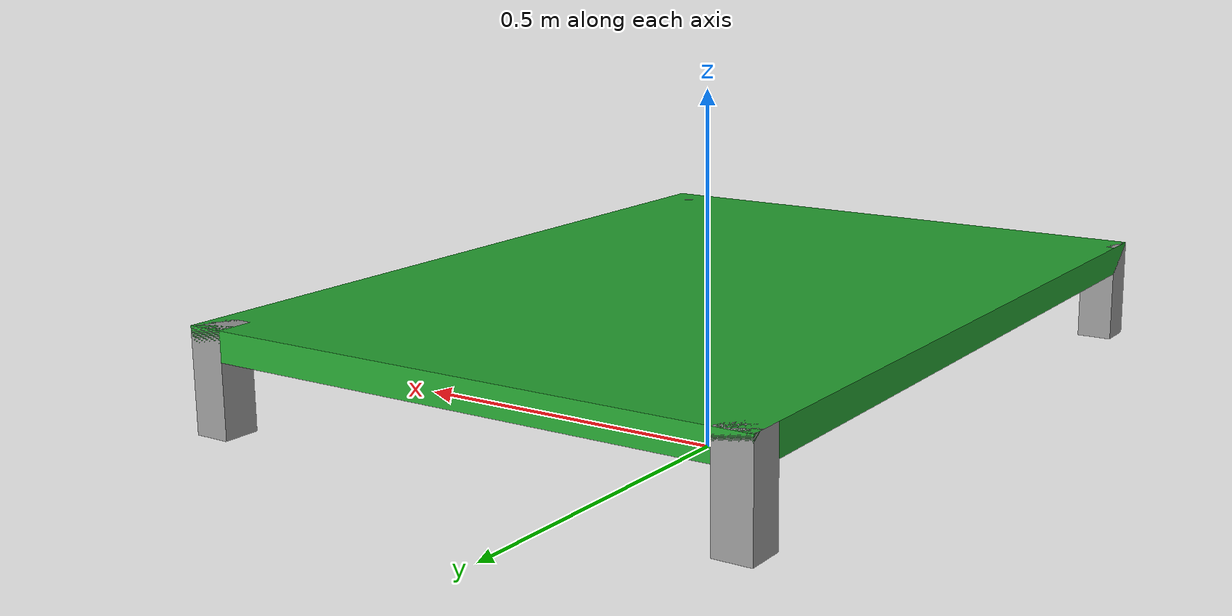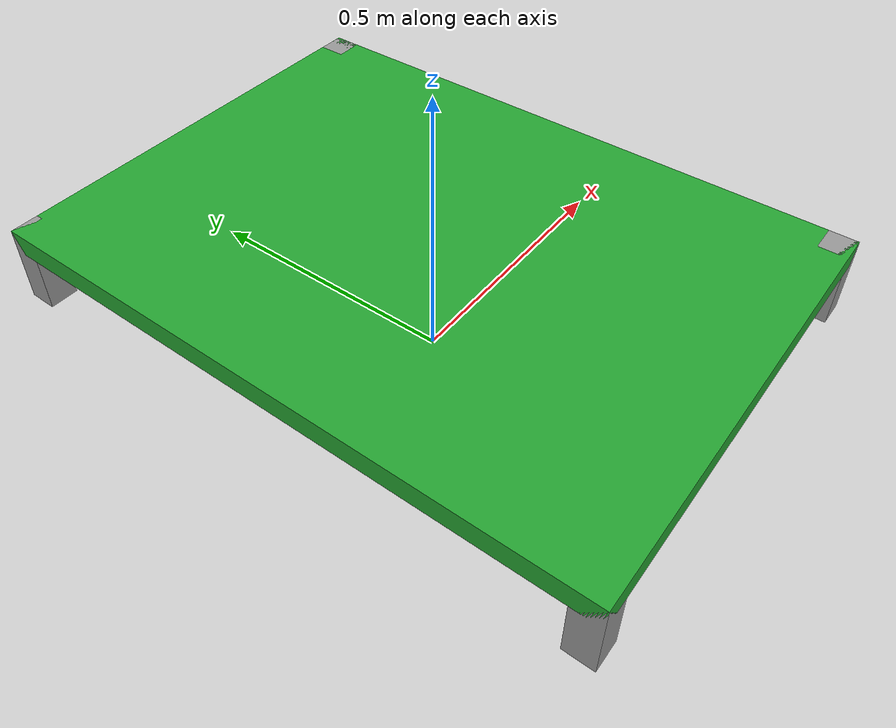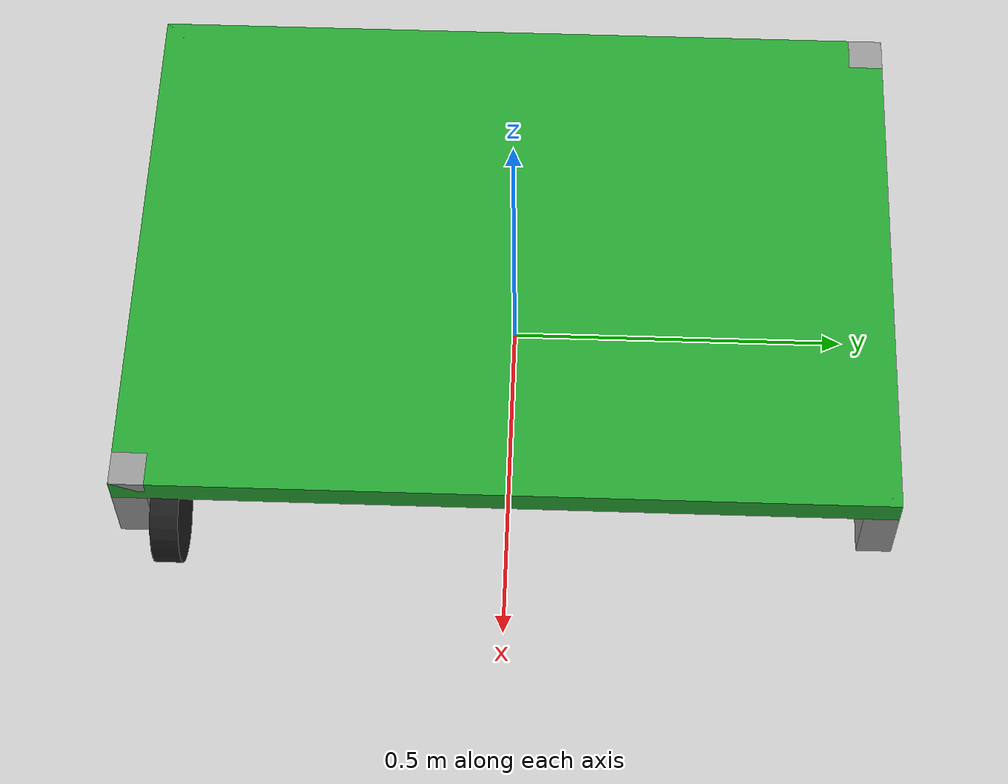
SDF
<?xml version='1.0'?>
<sdf version='1.6'>
  <model name='temp03'>
    <link name='link_0'>
      <pose frame=''>0 0 0.22 0 -0 0</pose>
      <inertial>
        <mass>1</mass>
        <inertia>
          <ixx>0.166667</ixx>
          <ixy>0</ixy>
          <ixz>0</ixz>
          <iyy>0.166667</iyy>
          <iyz>0</iyz>
          <izz>0.166667</izz>
        </inertia>
        <pose frame=''>0 0 0 0 -0 0</pose>
      </inertial>
      <self_collide>0</self_collide>
      <kinematic>0</kinematic>
      <visual name='visual'>
        <pose frame=''>0 0 0 0 -0 0</pose>
        <geometry>
          <box>
            <size>0.8 1.1 0.04</size>
          </box>
        </geometry>
        <material>
          <lighting>1</lighting>
          <script>
            <uri>file://media/materials/scripts/gazebo.material</uri>
            <name>Gazebo/Green</name>
          </script>
          <ambient>0 0.4 0 0</ambient>
          <diffuse>0 0.4 0 0</diffuse>
          <specular>0.1 0.1 0.1 1</specular>
          <emissive>0 0 0 1</emissive>
          <shader type='vertex'>
            <normal_map>__default__</normal_map>
          </shader>
        </material>
        <cast_shadows>1</cast_shadows>
        <transparency>0</transparency>
      </visual>
      <collision name='collision'>
        <laser_retro>0</laser_retro>
        <max_contacts>10</max_contacts>
        <pose frame=''>0 0 0 0 -0 0</pose>
        <geometry>
          <box>
            <size>0.8 1.1 0.04</size>
          </box>
        </geometry>
        <surface>
          <friction>
            <ode>
              <mu>1</mu>
              <mu2>1</mu2>
              <fdir1>0 0 0</fdir1>
              <slip1>0</slip1>
              <slip2>0</slip2>
            </ode>
            <torsional>
              <coefficient>1</coefficient>
              <patch_radius>0</patch_radius>
              <surface_radius>0</surface_radius>
              <use_patch_radius>1</use_patch_radius>
              <ode>
                <slip>0</slip>
              </ode>
            </torsional>
          </friction>
          <bounce>
            <restitution_coefficient>0</restitution_coefficient>
            <threshold>1e+06</threshold>
          </bounce>
          <contact>
            <collide_without_contact>0</collide_without_contact>
            <collide_without_contact_bitmask>1</collide_without_contact_bitmask>
            <collide_bitmask>1</collide_bitmask>
            <ode>
              <soft_cfm>0</soft_cfm>
              <soft_erp>0.2</soft_erp>
              <kp>1e+13</kp>
              <kd>1</kd>
              <max_vel>0.01</max_vel>
              <min_depth>0</min_depth>
            </ode>
            <bullet>
              <split_impulse>1</split_impulse>
              <split_impulse_penetration_threshold>-0.01</split_impulse_penetration_threshold>
              <soft_cfm>0</soft_cfm>
              <soft_erp>0.2</soft_erp>
              <kp>1e+13</kp>
              <kd>1</kd>
            </bullet>
          </contact>
        </surface>
      </collision>
    </link>
    <link name='link_0_0'>
      <pose frame=''>-0.375 -0.525 0.17 0 -0 0</pose>
      <inertial>
        <mass>1</mass>
        <inertia>
          <ixx>0.166667</ixx>
          <ixy>0</ixy>
          <ixz>0</ixz>
          <iyy>0.166667</iyy>
          <iyz>0</iyz>
          <izz>0.166667</izz>
        </inertia>
        <pose frame=''>0 0 0 0 -0 0</pose>
      </inertial>
      <self_collide>0</self_collide>
      <kinematic>0</kinematic>
      <visual name='visual'>
        <pose frame=''>0 0 0 0 -0 0</pose>
        <geometry>
          <box>
            <size>0.05 0.05 0.14</size>
          </box>
        </geometry>
        <material>
          <lighting>1</lighting>
          <script>
            <uri>file://media/materials/scripts/gazebo.material</uri>
            <name>Gazebo/Grey</name>
          </script>
          <ambient>0.3 0.3 0.3 1</ambient>
          <diffuse>0.7 0.7 0.7 1</diffuse>
          <specular>0.01 0.01 0.01 1</specular>
          <emissive>0 0 0 1</emissive>
          <shader type='vertex'>
            <normal_map>__default__</normal_map>
          </shader>
        </material>
        <cast_shadows>1</cast_shadows>
        <transparency>0</transparency>
      </visual>
      <collision name='collision'>
        <laser_retro>0</laser_retro>
        <max_contacts>10</max_contacts>
        <pose frame=''>0 0 0 0 -0 0</pose>
        <geometry>
          <box>
            <size>0.05 0.05 0.14</size>
          </box>
        </geometry>
        <surface>
          <friction>
            <ode>
              <mu>1</mu>
              <mu2>1</mu2>
              <fdir1>0 0 0</fdir1>
              <slip1>0</slip1>
              <slip2>0</slip2>
            </ode>
            <torsional>
              <coefficient>1</coefficient>
              <patch_radius>0</patch_radius>
              <surface_radius>0</surface_radius>
              <use_patch_radius>1</use_patch_radius>
              <ode>
                <slip>0</slip>
              </ode>
            </torsional>
          </friction>
          <bounce>
            <restitution_coefficient>0</restitution_coefficient>
            <threshold>1e+06</threshold>
          </bounce>
          <contact>
            <collide_without_contact>0</collide_without_contact>
            <collide_without_contact_bitmask>1</collide_without_contact_bitmask>
            <collide_bitmask>1</collide_bitmask>
            <ode>
              <soft_cfm>0</soft_cfm>
              <soft_erp>0.2</soft_erp>
              <kp>1e+13</kp>
              <kd>1</kd>
              <max_vel>0.01</max_vel>
              <min_depth>0</min_depth>
            </ode>
            <bullet>
              <split_impulse>1</split_impulse>
              <split_impulse_penetration_threshold>-0.01</split_impulse_penetration_threshold>
              <soft_cfm>0</soft_cfm>
              <soft_erp>0.2</soft_erp>
              <kp>1e+13</kp>
              <kd>1</kd>
            </bullet>
          </contact>
        </surface>
      </collision>
    </link>
    <link name='link_0_0_clone'>
      <pose frame=''>0.375 -0.525 0.17 0 -0 0</pose>
      <inertial>
        <mass>1</mass>
        <inertia>
          <ixx>0.166667</ixx>
          <ixy>0</ixy>
          <ixz>0</ixz>
          <iyy>0.166667</iyy>
          <iyz>0</iyz>
          <izz>0.166667</izz>
        </inertia>
        <pose frame=''>0 0 0 0 -0 0</pose>
      </inertial>
      <self_collide>0</self_collide>
      <kinematic>0</kinematic>
      <visual name='visual_0'>
        <pose frame=''>0 0 0 0 -0 0</pose>
        <geometry>
          <box>
            <size>0.05 0.05 0.14</size>
          </box>
        </geometry>
        <material>
          <lighting>1</lighting>
          <script>
            <uri>file://media/materials/scripts/gazebo.material</uri>
            <name>Gazebo/Grey</name>
          </script>
          <ambient>0.3 0.3 0.3 1</ambient>
          <diffuse>0.7 0.7 0.7 1</diffuse>
          <specular>0.01 0.01 0.01 1</specular>
          <emissive>0 0 0 1</emissive>
          <shader type='vertex'>
            <normal_map>__default__</normal_map>
          </shader>
        </material>
        <cast_shadows>1</cast_shadows>
        <transparency>0</transparency>
      </visual>
      <collision name='collision'>
        <laser_retro>0</laser_retro>
        <max_contacts>10</max_contacts>
        <pose frame=''>0 0 0 0 -0 0</pose>
        <geometry>
          <box>
            <size>0.05 0.05 0.14</size>
          </box>
        </geometry>
        <surface>
          <friction>
            <ode>
              <mu>1</mu>
              <mu2>1</mu2>
              <fdir1>0 0 0</fdir1>
              <slip1>0</slip1>
              <slip2>0</slip2>
            </ode>
            <torsional>
              <coefficient>1</coefficient>
              <patch_radius>0</patch_radius>
              <surface_radius>0</surface_radius>
              <use_patch_radius>1</use_patch_radius>
              <ode>
                <slip>0</slip>
              </ode>
            </torsional>
          </friction>
          <bounce>
            <restitution_coefficient>0</restitution_coefficient>
            <threshold>1e+06</threshold>
          </bounce>
          <contact>
            <collide_without_contact>0</collide_without_contact>
            <collide_without_contact_bitmask>1</collide_without_contact_bitmask>
            <collide_bitmask>1</collide_bitmask>
            <ode>
              <soft_cfm>0</soft_cfm>
              <soft_erp>0.2</soft_erp>
              <kp>1e+13</kp>
              <kd>1</kd>
              <max_vel>0.01</max_vel>
              <min_depth>0</min_depth>
            </ode>
            <bullet>
              <split_impulse>1</split_impulse>
              <split_impulse_penetration_threshold>-0.01</split_impulse_penetration_threshold>
              <soft_cfm>0</soft_cfm>
              <soft_erp>0.2</soft_erp>
              <kp>1e+13</kp>
              <kd>1</kd>
            </bullet>
          </contact>
        </surface>
      </collision>
    </link>
    <link name='link_0_0_clone_0'>
      <pose frame=''>-0.375 0.525 0.17 0 -0 0</pose>
      <inertial>
        <mass>1</mass>
        <inertia>
          <ixx>0.166667</ixx>
          <ixy>0</ixy>
          <ixz>0</ixz>
          <iyy>0.166667</iyy>
          <iyz>0</iyz>
          <izz>0.166667</izz>
        </inertia>
        <pose frame=''>0 0 0 0 -0 0</pose>
      </inertial>
      <self_collide>0</self_collide>
      <kinematic>0</kinematic>
      <visual name='visual_0'>
        <pose frame=''>0 0 0 0 -0 0</pose>
        <geometry>
          <box>
            <size>0.05 0.05 0.14</size>
          </box>
        </geometry>
        <material>
          <lighting>1</lighting>
          <script>
            <uri>file://media/materials/scripts/gazebo.material</uri>
            <name>Gazebo/Grey</name>
          </script>
          <ambient>0.3 0.3 0.3 1</ambient>
          <diffuse>0.7 0.7 0.7 1</diffuse>
          <specular>0.01 0.01 0.01 1</specular>
          <emissive>0 0 0 1</emissive>
          <shader type='vertex'>
            <normal_map>__default__</normal_map>
          </shader>
        </material>
        <cast_shadows>1</cast_shadows>
        <transparency>0</transparency>
      </visual>
      <collision name='collision'>
        <laser_retro>0</laser_retro>
        <max_contacts>10</max_contacts>
        <pose frame=''>0 0 0 0 -0 0</pose>
        <geometry>
          <box>
            <size>0.05 0.05 0.14</size>
          </box>
        </geometry>
        <surface>
          <friction>
            <ode>
              <mu>1</mu>
              <mu2>1</mu2>
              <fdir1>0 0 0</fdir1>
              <slip1>0</slip1>
              <slip2>0</slip2>
            </ode>
            <torsional>
              <coefficient>1</coefficient>
              <patch_radius>0</patch_radius>
              <surface_radius>0</surface_radius>
              <use_patch_radius>1</use_patch_radius>
              <ode>
                <slip>0</slip>
              </ode>
            </torsional>
          </friction>
          <bounce>
            <restitution_coefficient>0</restitution_coefficient>
            <threshold>1e+06</threshold>
          </bounce>
          <contact>
            <collide_without_contact>0</collide_without_contact>
            <collide_without_contact_bitmask>1</collide_without_contact_bitmask>
            <collide_bitmask>1</collide_bitmask>
            <ode>
              <soft_cfm>0</soft_cfm>
              <soft_erp>0.2</soft_erp>
              <kp>1e+13</kp>
              <kd>1</kd>
              <max_vel>0.01</max_vel>
              <min_depth>0</min_depth>
            </ode>
            <bullet>
              <split_impulse>1</split_impulse>
              <split_impulse_penetration_threshold>-0.01</split_impulse_penetration_threshold>
              <soft_cfm>0</soft_cfm>
              <soft_erp>0.2</soft_erp>
              <kp>1e+13</kp>
              <kd>1</kd>
            </bullet>
          </contact>
        </surface>
      </collision>
    </link>
    <link name='link_0_0_clone_1'>
      <pose frame=''>0.375 0.525 0.17 0 -0 0</pose>
      <inertial>
        <mass>1</mass>
        <inertia>
          <ixx>0.166667</ixx>
          <ixy>0</ixy>
          <ixz>0</ixz>
          <iyy>0.166667</iyy>
          <iyz>0</iyz>
          <izz>0.166667</izz>
        </inertia>
        <pose frame=''>0 0 0 0 -0 0</pose>
      </inertial>
      <self_collide>0</self_collide>
      <kinematic>0</kinematic>
      <visual name='visual_0'>
        <pose frame=''>0 0 0 0 -0 0</pose>
        <geometry>
          <box>
            <size>0.05 0.05 0.14</size>
          </box>
        </geometry>
        <material>
          <lighting>1</lighting>
          <script>
            <uri>file://media/materials/scripts/gazebo.material</uri>
            <name>Gazebo/Grey</name>
          </script>
          <ambient>0.3 0.3 0.3 1</ambient>
          <diffuse>0.7 0.7 0.7 1</diffuse>
          <specular>0.01 0.01 0.01 1</specular>
          <emissive>0 0 0 1</emissive>
          <shader type='vertex'>
            <normal_map>__default__</normal_map>
          </shader>
        </material>
        <cast_shadows>1</cast_shadows>
        <transparency>0</transparency>
      </visual>
      <collision name='collision'>
        <laser_retro>0</laser_retro>
        <max_contacts>10</max_contacts>
        <pose frame=''>0 0 0 0 -0 0</pose>
        <geometry>
          <box>
            <size>0.05 0.05 0.14</size>
          </box>
        </geometry>
        <surface>
          <friction>
            <ode>
              <mu>1</mu>
              <mu2>1</mu2>
              <fdir1>0 0 0</fdir1>
              <slip1>0</slip1>
              <slip2>0</slip2>
            </ode>
            <torsional>
              <coefficient>1</coefficient>
              <patch_radius>0</patch_radius>
              <surface_radius>0</surface_radius>
              <use_patch_radius>1</use_patch_radius>
              <ode>
                <slip>0</slip>
              </ode>
            </torsional>
          </friction>
          <bounce>
            <restitution_coefficient>0</restitution_coefficient>
            <threshold>1e+06</threshold>
          </bounce>
          <contact>
            <collide_without_contact>0</collide_without_contact>
            <collide_without_contact_bitmask>1</collide_without_contact_bitmask>
            <collide_bitmask>1</collide_bitmask>
            <ode>
              <soft_cfm>0</soft_cfm>
              <soft_erp>0.2</soft_erp>
              <kp>1e+13</kp>
              <kd>1</kd>
              <max_vel>0.01</max_vel>
              <min_depth>0</min_depth>
            </ode>
            <bullet>
              <split_impulse>1</split_impulse>
              <split_impulse_penetration_threshold>-0.01</split_impulse_penetration_threshold>
              <soft_cfm>0</soft_cfm>
              <soft_erp>0.2</soft_erp>
              <kp>1e+13</kp>
              <kd>1</kd>
            </bullet>
          </contact>
        </surface>
      </collision>
    </link>
    <link name='link_1'>
      <pose frame=''>0.375 -0.48 0.104087 1.5707 -0 0</pose>
      <inertial>
        <mass>1</mass>
        <inertia>
          <ixx>0.145833</ixx>
          <ixy>0</ixy>
          <ixz>0</ixz>
          <iyy>0.145833</iyy>
          <iyz>0</iyz>
          <izz>0.125</izz>
        </inertia>
        <pose frame=''>0 0 0 0 -0 0</pose>
      </inertial>
      <gravity>1</gravity>
      <self_collide>0</self_collide>
      <kinematic>0</kinematic>
      <visual name='visual'>
        <pose frame=''>0 0 0 0 -0 0</pose>
        <geometry>
          <cylinder>
            <radius>0.07</radius>
            <length>0.04</length>
          </cylinder>
        </geometry>
        <material>
          <lighting>1</lighting>
          <script>
            <uri>file://media/materials/scripts/gazebo.material</uri>
            <name>Gazebo/Black</name>
          </script>
          <ambient>0 0 0 1</ambient>
          <diffuse>0 0 0 1</diffuse>
          <specular>0.1 0.1 0.1 1</specular>
          <emissive>0 0 0 1</emissive>
          <shader type='vertex'>
            <normal_map>__default__</normal_map>
          </shader>
        </material>
        <cast_shadows>1</cast_shadows>
        <transparency>0</transparency>
      </visual>
      <collision name='collision'>
        <laser_retro>0</laser_retro>
        <max_contacts>10</max_contacts>
        <pose frame=''>0 0 0 0 -0 0</pose>
        <geometry>
          <cylinder>
            <radius>0.07</radius>
            <length>0.04</length>
          </cylinder>
        </geometry>
        <surface>
          <friction>
            <ode>
              <mu>1</mu>
              <mu2>1</mu2>
              <fdir1>0 0 0</fdir1>
              <slip1>0</slip1>
              <slip2>0</slip2>
            </ode>
            <torsional>
              <coefficient>1</coefficient>
              <patch_radius>0</patch_radius>
              <surface_radius>0</surface_radius>
              <use_patch_radius>1</use_patch_radius>
              <ode>
                <slip>0</slip>
              </ode>
            </torsional>
          </friction>
          <bounce>
            <restitution_coefficient>0</restitution_coefficient>
            <threshold>1e+06</threshold>
          </bounce>
          <contact>
            <collide_without_contact>0</collide_without_contact>
            <collide_without_contact_bitmask>1</collide_without_contact_bitmask>
            <collide_bitmask>1</collide_bitmask>
            <ode>
              <soft_cfm>0</soft_cfm>
              <soft_erp>0.2</soft_erp>
              <kp>1e+13</kp>
              <kd>1</kd>
              <max_vel>0.01</max_vel>
              <min_depth>0</min_depth>
            </ode>
            <bullet>
              <split_impulse>1</split_impulse>
              <split_impulse_penetration_threshold>-0.01</split_impulse_penetration_threshold>
              <soft_cfm>0</soft_cfm>
              <soft_erp>0.2</soft_erp>
              <kp>1e+13</kp>
              <kd>1</kd>
            </bullet>
          </contact>
        </surface>
      </collision>
    </link>
    <joint name='link_0_0_JOINT_1' type='fixed'>
      <parent>link_0_0</parent>
      <child>link_0</child>
      <pose frame=''>0 0 0 0 -0 0</pose>
      <physics>
        <ode>
          <limit>
            <cfm>0</cfm>
            <erp>0.2</erp>
          </limit>
          <suspension>
            <cfm>0</cfm>
            <erp>0.2</erp>
          </suspension>
        </ode>
      </physics>
    </joint>
    <joint name='link_0_0_clone_0_JOINT_6' type='fixed'>
      <parent>link_0_0_clone_0</parent>
      <child>link_0</child>
      <pose frame=''>0 0 0 0 -0 0</pose>
      <physics>
        <ode>
          <limit>
            <cfm>0</cfm>
            <erp>0.2</erp>
          </limit>
          <suspension>
            <cfm>0</cfm>
            <erp>0.2</erp>
          </suspension>
        </ode>
      </physics>
    </joint>
    <joint name='link_0_0_clone_1_JOINT_8' type='fixed'>
      <parent>link_0_0_clone_1</parent>
      <child>link_0</child>
      <pose frame=''>0 0 0 0 -0 0</pose>
      <physics>
        <ode>
          <limit>
            <cfm>0</cfm>
            <erp>0.2</erp>
          </limit>
          <suspension>
            <cfm>0</cfm>
            <erp>0.2</erp>
          </suspension>
        </ode>
      </physics>
    </joint>
    <joint name='link_0_0_clone_JOINT_0' type='revolute'>
      <parent>link_0_0_clone</parent>
      <child>link_1</child>
      <pose frame=''>0 0 0 0 -0 0</pose>
      <axis>
        <xyz>0 0 1</xyz>
        <use_parent_model_frame>0</use_parent_model_frame>
        <limit>
          <lower>-1.79769e+308</lower>
          <upper>1.79769e+308</upper>
          <effort>-1</effort>
          <velocity>-1</velocity>
        </limit>
        <dynamics>
          <spring_reference>0</spring_reference>
          <spring_stiffness>0</spring_stiffness>
          <damping>0</damping>
        </dynamics>
      </axis>
      <physics>
        <ode>
          <limit>
            <cfm>0</cfm>
            <erp>0.2</erp>
          </limit>
          <suspension>
            <cfm>0</cfm>
            <erp>0.2</erp>
          </suspension>
        </ode>
      </physics>
    </joint>
    <joint name='link_0_0_clone_JOINT_4' type='fixed'>
      <parent>link_0_0_clone</parent>
      <child>link_0</child>
      <pose frame=''>0 0 0 0 -0 0</pose>
      <physics>
        <ode>
          <limit>
            <cfm>0</cfm>
            <erp>0.2</erp>
          </limit>
          <suspension>
            <cfm>0</cfm>
            <erp>0.2</erp>
          </suspension>
        </ode>
      </physics>
    </joint>
    <joint name='link_0_JOINT_0' type='fixed'>
      <parent>link_0</parent>
      <child>link_0_0</child>
      <pose frame=''>0 0 0 0 -0 0</pose>
      <physics>
        <ode>
          <limit>
            <cfm>0</cfm>
            <erp>0.2</erp>
          </limit>
          <suspension>
            <cfm>0</cfm>
            <erp>0.2</erp>
          </suspension>
        </ode>
      </physics>
    </joint>
    <joint name='link_0_JOINT_2' type='fixed'>
      <parent>link_0</parent>
      <child>link_0_0_clone</child>
      <pose frame=''>0 0 0 0 -0 0</pose>
      <physics>
        <ode>
          <limit>
            <cfm>0</cfm>
            <erp>0.2</erp>
          </limit>
          <suspension>
            <cfm>0</cfm>
            <erp>0.2</erp>
          </suspension>
        </ode>
      </physics>
    </joint>
    <joint name='link_0_JOINT_5' type='fixed'>
      <parent>link_0</parent>
      <child>link_0_0_clone_0</child>
      <pose frame=''>0 0 0 0 -0 0</pose>
      <physics>
        <ode>
          <limit>
            <cfm>0</cfm>
            <erp>0.2</erp>
          </limit>
          <suspension>
            <cfm>0</cfm>
            <erp>0.2</erp>
          </suspension>
        </ode>
      </physics>
    </joint>
    <joint name='link_0_JOINT_7' type='fixed'>
      <parent>link_0</parent>
      <child>link_0_0_clone_1</child>
      <pose frame=''>0 0 0 0 -0 0</pose>
      <physics>
        <ode>
          <limit>
            <cfm>0</cfm>
            <erp>0.2</erp>
          </limit>
          <suspension>
            <cfm>0</cfm>
            <erp>0.2</erp>
          </suspension>
        </ode>
      </physics>
    </joint>
    <static>0</static>
    <allow_auto_disable>1</allow_auto_disable>
  </model>
</sdf>
